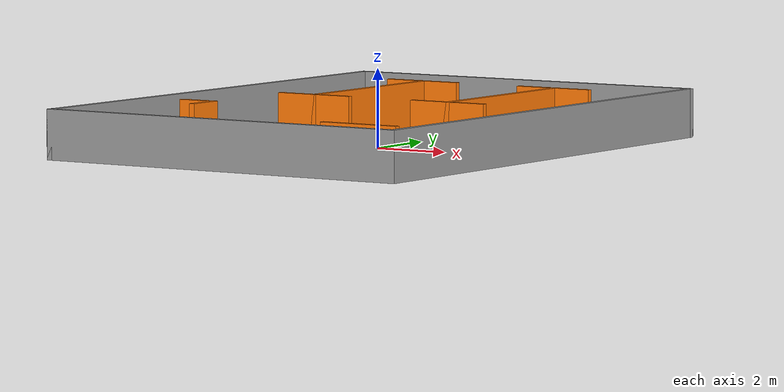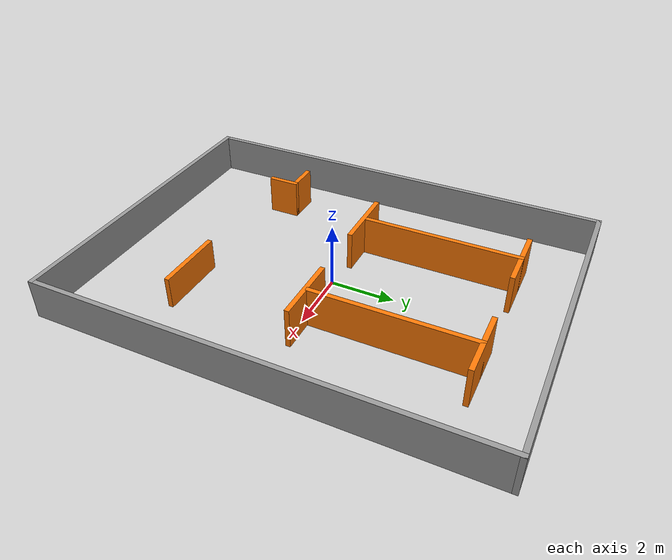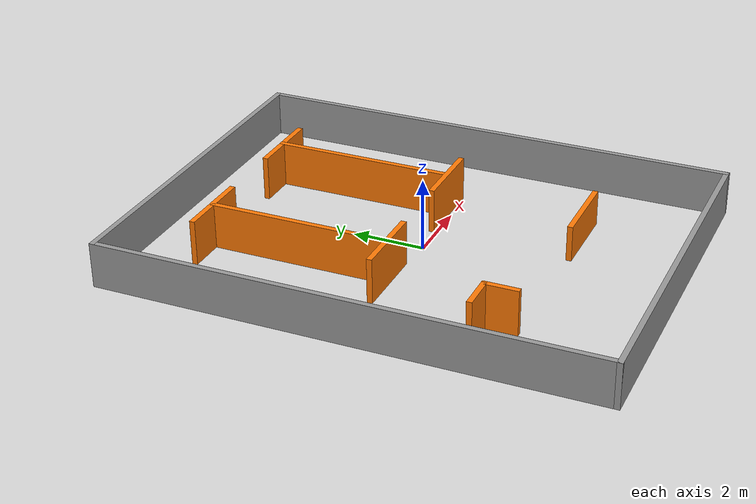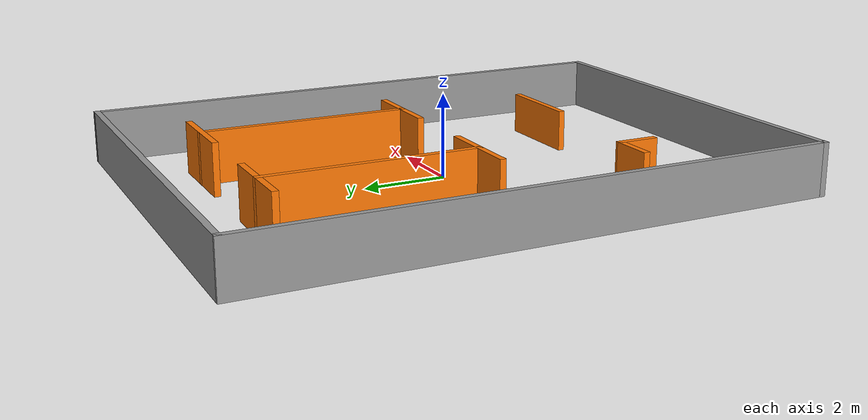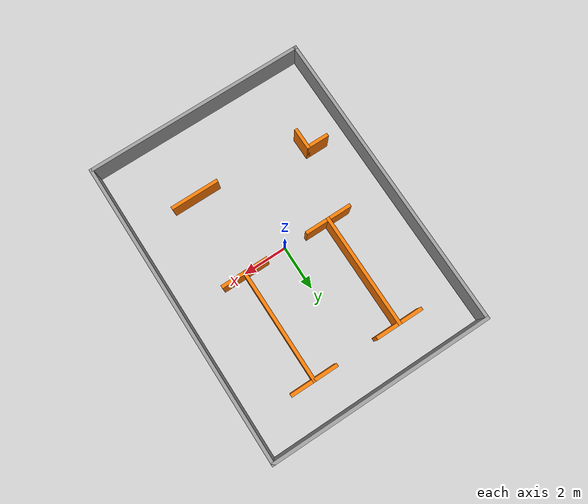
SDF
<?xml version='1.0'?>
<sdf version='1.7'>
  <model name='warehouse_building'>
    <link name='Wall_17'>
      <pose>5 -1.1e-05 0 0 -0 1.5708</pose>
      <self_collide>0</self_collide>
      <enable_wind>0</enable_wind>
      <kinematic>0</kinematic>
      <visual name='Wall_17_Visual'>
        <pose>0 0 0.625 0 -0 0</pose>
        <geometry>
          <box>
            <size>13.873 0.15 1.25</size>
          </box>
        </geometry>
        <material>
          <script>
            <uri>file://media/materials/scripts/gazebo.material</uri>
            <name>Gazebo/Grey</name>
          </script>
          <ambient>1 1 1 1</ambient>
          <shader type='pixel'/>
        </material>
        <meta>
          <layer>0</layer>
        </meta>
        <transparency>0</transparency>
        <cast_shadows>1</cast_shadows>
      </visual>
      <collision name='Wall_17_Collision'>
        <laser_retro>0</laser_retro>
        <max_contacts>10</max_contacts>
        <pose>0 0 0.625 0 -0 0</pose>
        <geometry>
          <box>
            <size>13.873 0.15 1.25</size>
          </box>
        </geometry>
        <surface>
          <friction>
            <ode>
              <mu>1</mu>
              <mu2>1</mu2>
              <fdir1>0 0 0</fdir1>
              <slip1>0</slip1>
              <slip2>0</slip2>
            </ode>
            <torsional>
              <coefficient>1</coefficient>
              <patch_radius>0</patch_radius>
              <surface_radius>0</surface_radius>
              <use_patch_radius>1</use_patch_radius>
              <ode>
                <slip>0</slip>
              </ode>
            </torsional>
          </friction>
          <bounce>
            <restitution_coefficient>0</restitution_coefficient>
            <threshold>1e+06</threshold>
          </bounce>
          <contact>
            <collide_without_contact>0</collide_without_contact>
            <collide_without_contact_bitmask>1</collide_without_contact_bitmask>
            <collide_bitmask>1</collide_bitmask>
            <ode>
              <soft_cfm>0</soft_cfm>
              <soft_erp>0.2</soft_erp>
              <kp>1e+13</kp>
              <kd>1</kd>
              <max_vel>0.01</max_vel>
              <min_depth>0</min_depth>
            </ode>
            <bullet>
              <split_impulse>1</split_impulse>
              <split_impulse_penetration_threshold>-0.01</split_impulse_penetration_threshold>
              <soft_cfm>0</soft_cfm>
              <soft_erp>0.2</soft_erp>
              <kp>1e+13</kp>
              <kd>1</kd>
            </bullet>
          </contact>
        </surface>
      </collision>
    </link>
    <link name='Wall_20'>
      <pose>-5 -0.001511 0 0 -0 1.5708</pose>
      <self_collide>0</self_collide>
      <enable_wind>0</enable_wind>
      <kinematic>0</kinematic>
      <visual name='Wall_20_Visual'>
        <pose>0 0 0.625 0 -0 0</pose>
        <geometry>
          <box>
            <size>13.87 0.15 1.25</size>
          </box>
        </geometry>
        <material>
          <script>
            <uri>file://media/materials/scripts/gazebo.material</uri>
            <name>Gazebo/Grey</name>
          </script>
          <ambient>1 1 1 1</ambient>
          <shader type='pixel'/>
        </material>
        <meta>
          <layer>0</layer>
        </meta>
        <transparency>0</transparency>
        <cast_shadows>1</cast_shadows>
      </visual>
      <collision name='Wall_20_Collision'>
        <laser_retro>0</laser_retro>
        <max_contacts>10</max_contacts>
        <pose>0 0 0.625 0 -0 0</pose>
        <geometry>
          <box>
            <size>13.87 0.15 1.25</size>
          </box>
        </geometry>
        <surface>
          <friction>
            <ode>
              <mu>1</mu>
              <mu2>1</mu2>
              <fdir1>0 0 0</fdir1>
              <slip1>0</slip1>
              <slip2>0</slip2>
            </ode>
            <torsional>
              <coefficient>1</coefficient>
              <patch_radius>0</patch_radius>
              <surface_radius>0</surface_radius>
              <use_patch_radius>1</use_patch_radius>
              <ode>
                <slip>0</slip>
              </ode>
            </torsional>
          </friction>
          <bounce>
            <restitution_coefficient>0</restitution_coefficient>
            <threshold>1e+06</threshold>
          </bounce>
          <contact>
            <collide_without_contact>0</collide_without_contact>
            <collide_without_contact_bitmask>1</collide_without_contact_bitmask>
            <collide_bitmask>1</collide_bitmask>
            <ode>
              <soft_cfm>0</soft_cfm>
              <soft_erp>0.2</soft_erp>
              <kp>1e+13</kp>
              <kd>1</kd>
              <max_vel>0.01</max_vel>
              <min_depth>0</min_depth>
            </ode>
            <bullet>
              <split_impulse>1</split_impulse>
              <split_impulse_penetration_threshold>-0.01</split_impulse_penetration_threshold>
              <soft_cfm>0</soft_cfm>
              <soft_erp>0.2</soft_erp>
              <kp>1e+13</kp>
              <kd>1</kd>
            </bullet>
          </contact>
        </surface>
      </collision>
    </link>
    <link name='Wall_22'>
      <pose>0 6.85999 0 0 -0 0.0003</pose>
      <self_collide>0</self_collide>
      <enable_wind>0</enable_wind>
      <kinematic>0</kinematic>
      <visual name='Wall_22_Visual'>
        <pose>0 0 0.625 0 -0 0</pose>
        <geometry>
          <box>
            <size>10.15 0.15 1.25</size>
          </box>
        </geometry>
        <material>
          <script>
            <uri>file://media/materials/scripts/gazebo.material</uri>
            <name>Gazebo/Grey</name>
          </script>
          <ambient>1 1 1 1</ambient>
          <shader type='pixel'/>
        </material>
        <meta>
          <layer>0</layer>
        </meta>
        <transparency>0</transparency>
        <cast_shadows>1</cast_shadows>
      </visual>
      <collision name='Wall_22_Collision'>
        <laser_retro>0</laser_retro>
        <max_contacts>10</max_contacts>
        <pose>0 0 0.625 0 -0 0</pose>
        <geometry>
          <box>
            <size>10.15 0.15 1.25</size>
          </box>
        </geometry>
        <surface>
          <friction>
            <ode>
              <mu>1</mu>
              <mu2>1</mu2>
              <fdir1>0 0 0</fdir1>
              <slip1>0</slip1>
              <slip2>0</slip2>
            </ode>
            <torsional>
              <coefficient>1</coefficient>
              <patch_radius>0</patch_radius>
              <surface_radius>0</surface_radius>
              <use_patch_radius>1</use_patch_radius>
              <ode>
                <slip>0</slip>
              </ode>
            </torsional>
          </friction>
          <bounce>
            <restitution_coefficient>0</restitution_coefficient>
            <threshold>1e+06</threshold>
          </bounce>
          <contact>
            <collide_without_contact>0</collide_without_contact>
            <collide_without_contact_bitmask>1</collide_without_contact_bitmask>
            <collide_bitmask>1</collide_bitmask>
            <ode>
              <soft_cfm>0</soft_cfm>
              <soft_erp>0.2</soft_erp>
              <kp>1e+13</kp>
              <kd>1</kd>
              <max_vel>0.01</max_vel>
              <min_depth>0</min_depth>
            </ode>
            <bullet>
              <split_impulse>1</split_impulse>
              <split_impulse_penetration_threshold>-0.01</split_impulse_penetration_threshold>
              <soft_cfm>0</soft_cfm>
              <soft_erp>0.2</soft_erp>
              <kp>1e+13</kp>
              <kd>1</kd>
            </bullet>
          </contact>
        </surface>
      </collision>
    </link>
    <link name='Wall_27'>
      <pose>1.975 -3.76151 0 0 -0 3.14159</pose>
      <self_collide>0</self_collide>
      <enable_wind>0</enable_wind>
      <kinematic>0</kinematic>
      <visual name='Wall_27_Visual'>
        <pose>0 0 0.5 0 -0 0</pose>
        <geometry>
          <box>
            <size>2.2 0.15 1</size>
          </box>
        </geometry>
        <material>
          <script>
            <uri>file://media/materials/scripts/gazebo.material</uri>
            <name>Gazebo/Grey</name>
          </script>
          <ambient>0.996078 0.47451 0.0196078 1</ambient>
          <shader type='pixel'/>
        </material>
        <meta>
          <layer>0</layer>
        </meta>
        <transparency>0</transparency>
        <cast_shadows>1</cast_shadows>
      </visual>
      <collision name='Wall_27_Collision'>
        <laser_retro>0</laser_retro>
        <max_contacts>10</max_contacts>
        <pose>0 0 0.5 0 -0 0</pose>
        <geometry>
          <box>
            <size>2.2 0.15 1</size>
          </box>
        </geometry>
        <surface>
          <friction>
            <ode>
              <mu>1</mu>
              <mu2>1</mu2>
              <fdir1>0 0 0</fdir1>
              <slip1>0</slip1>
              <slip2>0</slip2>
            </ode>
            <torsional>
              <coefficient>1</coefficient>
              <patch_radius>0</patch_radius>
              <surface_radius>0</surface_radius>
              <use_patch_radius>1</use_patch_radius>
              <ode>
                <slip>0</slip>
              </ode>
            </torsional>
          </friction>
          <bounce>
            <restitution_coefficient>0</restitution_coefficient>
            <threshold>1e+06</threshold>
          </bounce>
          <contact>
            <collide_without_contact>0</collide_without_contact>
            <collide_without_contact_bitmask>1</collide_without_contact_bitmask>
            <collide_bitmask>1</collide_bitmask>
            <ode>
              <soft_cfm>0</soft_cfm>
              <soft_erp>0.2</soft_erp>
              <kp>1e+13</kp>
              <kd>1</kd>
              <max_vel>0.01</max_vel>
              <min_depth>0</min_depth>
            </ode>
            <bullet>
              <split_impulse>1</split_impulse>
              <split_impulse_penetration_threshold>-0.01</split_impulse_penetration_threshold>
              <soft_cfm>0</soft_cfm>
              <soft_erp>0.2</soft_erp>
              <kp>1e+13</kp>
              <kd>1</kd>
            </bullet>
          </contact>
        </surface>
      </collision>
    </link>
    <link name='Wall_29'>
      <pose>-2 2.63849 0 0 -0 1.5708</pose>
      <self_collide>0</self_collide>
      <enable_wind>0</enable_wind>
      <kinematic>0</kinematic>
      <visual name='Wall_29_Visual'>
        <pose>0 0 0.625 0 -0 0</pose>
        <geometry>
          <box>
            <size>5.15 0.15 1.25</size>
          </box>
        </geometry>
        <material>
          <script>
            <uri>file://media/materials/scripts/gazebo.material</uri>
            <name>Gazebo/Grey</name>
          </script>
          <ambient>0.996078 0.47451 0.0196078 1</ambient>
          <shader type='pixel'/>
        </material>
        <meta>
          <layer>0</layer>
        </meta>
        <transparency>0</transparency>
        <cast_shadows>1</cast_shadows>
      </visual>
      <collision name='Wall_29_Collision'>
        <laser_retro>0</laser_retro>
        <max_contacts>10</max_contacts>
        <pose>0 0 0.625 0 -0 0</pose>
        <geometry>
          <box>
            <size>5.15 0.15 1.25</size>
          </box>
        </geometry>
        <surface>
          <friction>
            <ode>
              <mu>1</mu>
              <mu2>1</mu2>
              <fdir1>0 0 0</fdir1>
              <slip1>0</slip1>
              <slip2>0</slip2>
            </ode>
            <torsional>
              <coefficient>1</coefficient>
              <patch_radius>0</patch_radius>
              <surface_radius>0</surface_radius>
              <use_patch_radius>1</use_patch_radius>
              <ode>
                <slip>0</slip>
              </ode>
            </torsional>
          </friction>
          <bounce>
            <restitution_coefficient>0</restitution_coefficient>
            <threshold>1e+06</threshold>
          </bounce>
          <contact>
            <collide_without_contact>0</collide_without_contact>
            <collide_without_contact_bitmask>1</collide_without_contact_bitmask>
            <collide_bitmask>1</collide_bitmask>
            <ode>
              <soft_cfm>0</soft_cfm>
              <soft_erp>0.2</soft_erp>
              <kp>1e+13</kp>
              <kd>1</kd>
              <max_vel>0.01</max_vel>
              <min_depth>0</min_depth>
            </ode>
            <bullet>
              <split_impulse>1</split_impulse>
              <split_impulse_penetration_threshold>-0.01</split_impulse_penetration_threshold>
              <soft_cfm>0</soft_cfm>
              <soft_erp>0.2</soft_erp>
              <kp>1e+13</kp>
              <kd>1</kd>
            </bullet>
          </contact>
        </surface>
      </collision>
    </link>
    <link name='Wall_31'>
      <pose>-2 5.13849 0 0 -0 0</pose>
      <self_collide>0</self_collide>
      <enable_wind>0</enable_wind>
      <kinematic>0</kinematic>
      <visual name='Wall_31_Visual'>
        <pose>0 0 0.625 0 -0 0</pose>
        <geometry>
          <box>
            <size>2.15 0.15 1.25</size>
          </box>
        </geometry>
        <material>
          <script>
            <uri>file://media/materials/scripts/gazebo.material</uri>
            <name>Gazebo/Grey</name>
          </script>
          <ambient>0.996078 0.47451 0.0196078 1</ambient>
          <shader type='pixel'/>
        </material>
        <meta>
          <layer>0</layer>
        </meta>
        <transparency>0</transparency>
        <cast_shadows>1</cast_shadows>
      </visual>
      <collision name='Wall_31_Collision'>
        <laser_retro>0</laser_retro>
        <max_contacts>10</max_contacts>
        <pose>0 0 0.625 0 -0 0</pose>
        <geometry>
          <box>
            <size>2.15 0.15 1.25</size>
          </box>
        </geometry>
        <surface>
          <friction>
            <ode>
              <mu>1</mu>
              <mu2>1</mu2>
              <fdir1>0 0 0</fdir1>
              <slip1>0</slip1>
              <slip2>0</slip2>
            </ode>
            <torsional>
              <coefficient>1</coefficient>
              <patch_radius>0</patch_radius>
              <surface_radius>0</surface_radius>
              <use_patch_radius>1</use_patch_radius>
              <ode>
                <slip>0</slip>
              </ode>
            </torsional>
          </friction>
          <bounce>
            <restitution_coefficient>0</restitution_coefficient>
            <threshold>1e+06</threshold>
          </bounce>
          <contact>
            <collide_without_contact>0</collide_without_contact>
            <collide_without_contact_bitmask>1</collide_without_contact_bitmask>
            <collide_bitmask>1</collide_bitmask>
            <ode>
              <soft_cfm>0</soft_cfm>
              <soft_erp>0.2</soft_erp>
              <kp>1e+13</kp>
              <kd>1</kd>
              <max_vel>0.01</max_vel>
              <min_depth>0</min_depth>
            </ode>
            <bullet>
              <split_impulse>1</split_impulse>
              <split_impulse_penetration_threshold>-0.01</split_impulse_penetration_threshold>
              <soft_cfm>0</soft_cfm>
              <soft_erp>0.2</soft_erp>
              <kp>1e+13</kp>
              <kd>1</kd>
            </bullet>
          </contact>
        </surface>
      </collision>
    </link>
    <link name='Wall_33'>
      <pose>-2 0.138489 0 0 -0 0</pose>
      <self_collide>0</self_collide>
      <enable_wind>0</enable_wind>
      <kinematic>0</kinematic>
      <visual name='Wall_33_Visual'>
        <pose>0 0 0.625 0 -0 0</pose>
        <geometry>
          <box>
            <size>2.15 0.15 1.25</size>
          </box>
        </geometry>
        <material>
          <script>
            <uri>file://media/materials/scripts/gazebo.material</uri>
            <name>Gazebo/Grey</name>
          </script>
          <ambient>0.996078 0.47451 0.0196078 1</ambient>
          <shader type='pixel'/>
        </material>
        <meta>
          <layer>0</layer>
        </meta>
        <transparency>0</transparency>
        <cast_shadows>1</cast_shadows>
      </visual>
      <collision name='Wall_33_Collision'>
        <laser_retro>0</laser_retro>
        <max_contacts>10</max_contacts>
        <pose>0 0 0.625 0 -0 0</pose>
        <geometry>
          <box>
            <size>2.15 0.15 1.25</size>
          </box>
        </geometry>
        <surface>
          <friction>
            <ode>
              <mu>1</mu>
              <mu2>1</mu2>
              <fdir1>0 0 0</fdir1>
              <slip1>0</slip1>
              <slip2>0</slip2>
            </ode>
            <torsional>
              <coefficient>1</coefficient>
              <patch_radius>0</patch_radius>
              <surface_radius>0</surface_radius>
              <use_patch_radius>1</use_patch_radius>
              <ode>
                <slip>0</slip>
              </ode>
            </torsional>
          </friction>
          <bounce>
            <restitution_coefficient>0</restitution_coefficient>
            <threshold>1e+06</threshold>
          </bounce>
          <contact>
            <collide_without_contact>0</collide_without_contact>
            <collide_without_contact_bitmask>1</collide_without_contact_bitmask>
            <collide_bitmask>1</collide_bitmask>
            <ode>
              <soft_cfm>0</soft_cfm>
              <soft_erp>0.2</soft_erp>
              <kp>1e+13</kp>
              <kd>1</kd>
              <max_vel>0.01</max_vel>
              <min_depth>0</min_depth>
            </ode>
            <bullet>
              <split_impulse>1</split_impulse>
              <split_impulse_penetration_threshold>-0.01</split_impulse_penetration_threshold>
              <soft_cfm>0</soft_cfm>
              <soft_erp>0.2</soft_erp>
              <kp>1e+13</kp>
              <kd>1</kd>
            </bullet>
          </contact>
        </surface>
      </collision>
    </link>
    <link name='Wall_35'>
      <pose>2 2.63849 0 0 0 -1.5708</pose>
      <self_collide>0</self_collide>
      <enable_wind>0</enable_wind>
      <kinematic>0</kinematic>
      <visual name='Wall_35_Visual'>
        <pose>0 0 0.625 0 -0 0</pose>
        <geometry>
          <box>
            <size>5.15 0.15 1.25</size>
          </box>
        </geometry>
        <material>
          <script>
            <uri>file://media/materials/scripts/gazebo.material</uri>
            <name>Gazebo/Grey</name>
          </script>
          <ambient>0.996078 0.47451 0.0196078 1</ambient>
          <shader type='pixel'/>
        </material>
        <meta>
          <layer>0</layer>
        </meta>
        <transparency>0</transparency>
        <cast_shadows>1</cast_shadows>
      </visual>
      <collision name='Wall_35_Collision'>
        <laser_retro>0</laser_retro>
        <max_contacts>10</max_contacts>
        <pose>0 0 0.625 0 -0 0</pose>
        <geometry>
          <box>
            <size>5.15 0.15 1.25</size>
          </box>
        </geometry>
        <surface>
          <friction>
            <ode>
              <mu>1</mu>
              <mu2>1</mu2>
              <fdir1>0 0 0</fdir1>
              <slip1>0</slip1>
              <slip2>0</slip2>
            </ode>
            <torsional>
              <coefficient>1</coefficient>
              <patch_radius>0</patch_radius>
              <surface_radius>0</surface_radius>
              <use_patch_radius>1</use_patch_radius>
              <ode>
                <slip>0</slip>
              </ode>
            </torsional>
          </friction>
          <bounce>
            <restitution_coefficient>0</restitution_coefficient>
            <threshold>1e+06</threshold>
          </bounce>
          <contact>
            <collide_without_contact>0</collide_without_contact>
            <collide_without_contact_bitmask>1</collide_without_contact_bitmask>
            <collide_bitmask>1</collide_bitmask>
            <ode>
              <soft_cfm>0</soft_cfm>
              <soft_erp>0.2</soft_erp>
              <kp>1e+13</kp>
              <kd>1</kd>
              <max_vel>0.01</max_vel>
              <min_depth>0</min_depth>
            </ode>
            <bullet>
              <split_impulse>1</split_impulse>
              <split_impulse_penetration_threshold>-0.01</split_impulse_penetration_threshold>
              <soft_cfm>0</soft_cfm>
              <soft_erp>0.2</soft_erp>
              <kp>1e+13</kp>
              <kd>1</kd>
            </bullet>
          </contact>
        </surface>
      </collision>
    </link>
    <link name='Wall_39'>
      <pose>2 0.138489 0 0 -0 0</pose>
      <self_collide>0</self_collide>
      <enable_wind>0</enable_wind>
      <kinematic>0</kinematic>
      <visual name='Wall_39_Visual'>
        <pose>0 0 0.625 0 -0 0</pose>
        <geometry>
          <box>
            <size>2.15 0.15 1.25</size>
          </box>
        </geometry>
        <material>
          <script>
            <uri>file://media/materials/scripts/gazebo.material</uri>
            <name>Gazebo/Grey</name>
          </script>
          <ambient>0.996078 0.47451 0.0196078 1</ambient>
          <shader type='pixel'/>
        </material>
        <meta>
          <layer>0</layer>
        </meta>
        <transparency>0</transparency>
        <cast_shadows>1</cast_shadows>
      </visual>
      <collision name='Wall_39_Collision'>
        <laser_retro>0</laser_retro>
        <max_contacts>10</max_contacts>
        <pose>0 0 0.625 0 -0 0</pose>
        <geometry>
          <box>
            <size>2.15 0.15 1.25</size>
          </box>
        </geometry>
        <surface>
          <friction>
            <ode>
              <mu>1</mu>
              <mu2>1</mu2>
              <fdir1>0 0 0</fdir1>
              <slip1>0</slip1>
              <slip2>0</slip2>
            </ode>
            <torsional>
              <coefficient>1</coefficient>
              <patch_radius>0</patch_radius>
              <surface_radius>0</surface_radius>
              <use_patch_radius>1</use_patch_radius>
              <ode>
                <slip>0</slip>
              </ode>
            </torsional>
          </friction>
          <bounce>
            <restitution_coefficient>0</restitution_coefficient>
            <threshold>1e+06</threshold>
          </bounce>
          <contact>
            <collide_without_contact>0</collide_without_contact>
            <collide_without_contact_bitmask>1</collide_without_contact_bitmask>
            <collide_bitmask>1</collide_bitmask>
            <ode>
              <soft_cfm>0</soft_cfm>
              <soft_erp>0.2</soft_erp>
              <kp>1e+13</kp>
              <kd>1</kd>
              <max_vel>0.01</max_vel>
              <min_depth>0</min_depth>
            </ode>
            <bullet>
              <split_impulse>1</split_impulse>
              <split_impulse_penetration_threshold>-0.01</split_impulse_penetration_threshold>
              <soft_cfm>0</soft_cfm>
              <soft_erp>0.2</soft_erp>
              <kp>1e+13</kp>
              <kd>1</kd>
            </bullet>
          </contact>
        </surface>
      </collision>
    </link>
    <link name='Wall_41'>
      <pose>2 5.13849 0 0 -0 3.14159</pose>
      <self_collide>0</self_collide>
      <enable_wind>0</enable_wind>
      <kinematic>0</kinematic>
      <visual name='Wall_41_Visual'>
        <pose>0 0 0.625 0 -0 0</pose>
        <geometry>
          <box>
            <size>2.15 0.15 1.25</size>
          </box>
        </geometry>
        <material>
          <script>
            <uri>file://media/materials/scripts/gazebo.material</uri>
            <name>Gazebo/Grey</name>
          </script>
          <ambient>0.996078 0.47451 0.0196078 1</ambient>
          <shader type='pixel'/>
        </material>
        <meta>
          <layer>0</layer>
        </meta>
        <transparency>0</transparency>
        <cast_shadows>1</cast_shadows>
      </visual>
      <collision name='Wall_41_Collision'>
        <laser_retro>0</laser_retro>
        <max_contacts>10</max_contacts>
        <pose>0 0 0.625 0 -0 0</pose>
        <geometry>
          <box>
            <size>2.15 0.15 1.25</size>
          </box>
        </geometry>
        <surface>
          <friction>
            <ode>
              <mu>1</mu>
              <mu2>1</mu2>
              <fdir1>0 0 0</fdir1>
              <slip1>0</slip1>
              <slip2>0</slip2>
            </ode>
            <torsional>
              <coefficient>1</coefficient>
              <patch_radius>0</patch_radius>
              <surface_radius>0</surface_radius>
              <use_patch_radius>1</use_patch_radius>
              <ode>
                <slip>0</slip>
              </ode>
            </torsional>
          </friction>
          <bounce>
            <restitution_coefficient>0</restitution_coefficient>
            <threshold>1e+06</threshold>
          </bounce>
          <contact>
            <collide_without_contact>0</collide_without_contact>
            <collide_without_contact_bitmask>1</collide_without_contact_bitmask>
            <collide_bitmask>1</collide_bitmask>
            <ode>
              <soft_cfm>0</soft_cfm>
              <soft_erp>0.2</soft_erp>
              <kp>1e+13</kp>
              <kd>1</kd>
              <max_vel>0.01</max_vel>
              <min_depth>0</min_depth>
            </ode>
            <bullet>
              <split_impulse>1</split_impulse>
              <split_impulse_penetration_threshold>-0.01</split_impulse_penetration_threshold>
              <soft_cfm>0</soft_cfm>
              <soft_erp>0.2</soft_erp>
              <kp>1e+13</kp>
              <kd>1</kd>
            </bullet>
          </contact>
        </surface>
      </collision>
    </link>
    <link name='Wall_43'>
      <pose>0 -6.86151 0 0 -0 0</pose>
      <self_collide>0</self_collide>
      <enable_wind>0</enable_wind>
      <kinematic>0</kinematic>
      <visual name='Wall_43_Visual'>
        <pose>0 0 0.625 0 -0 0</pose>
        <geometry>
          <box>
            <size>10.15 0.15 1.25</size>
          </box>
        </geometry>
        <material>
          <script>
            <uri>file://media/materials/scripts/gazebo.material</uri>
            <name>Gazebo/Grey</name>
          </script>
          <ambient>1 1 1 1</ambient>
          <shader type='pixel'/>
        </material>
        <meta>
          <layer>0</layer>
        </meta>
        <transparency>0</transparency>
        <cast_shadows>1</cast_shadows>
      </visual>
      <collision name='Wall_43_Collision'>
        <laser_retro>0</laser_retro>
        <max_contacts>10</max_contacts>
        <pose>0 0 0.625 0 -0 0</pose>
        <geometry>
          <box>
            <size>10.15 0.15 1.25</size>
          </box>
        </geometry>
        <surface>
          <friction>
            <ode>
              <mu>1</mu>
              <mu2>1</mu2>
              <fdir1>0 0 0</fdir1>
              <slip1>0</slip1>
              <slip2>0</slip2>
            </ode>
            <torsional>
              <coefficient>1</coefficient>
              <patch_radius>0</patch_radius>
              <surface_radius>0</surface_radius>
              <use_patch_radius>1</use_patch_radius>
              <ode>
                <slip>0</slip>
              </ode>
            </torsional>
          </friction>
          <bounce>
            <restitution_coefficient>0</restitution_coefficient>
            <threshold>1e+06</threshold>
          </bounce>
          <contact>
            <collide_without_contact>0</collide_without_contact>
            <collide_without_contact_bitmask>1</collide_without_contact_bitmask>
            <collide_bitmask>1</collide_bitmask>
            <ode>
              <soft_cfm>0</soft_cfm>
              <soft_erp>0.2</soft_erp>
              <kp>1e+13</kp>
              <kd>1</kd>
              <max_vel>0.01</max_vel>
              <min_depth>0</min_depth>
            </ode>
            <bullet>
              <split_impulse>1</split_impulse>
              <split_impulse_penetration_threshold>-0.01</split_impulse_penetration_threshold>
              <soft_cfm>0</soft_cfm>
              <soft_erp>0.2</soft_erp>
              <kp>1e+13</kp>
              <kd>1</kd>
            </bullet>
          </contact>
        </surface>
      </collision>
    </link>
    <link name='Wall_45_clone'>
      <pose>-3 -3.28651 0 0 0 -1.5708</pose>
      <self_collide>0</self_collide>
      <enable_wind>0</enable_wind>
      <kinematic>0</kinematic>
      <gravity>1</gravity>
      <inertial>
        <mass>1</mass>
        <pose>0 0 0 0 -0 0</pose>
        <inertia>
          <ixx>1</ixx>
          <ixy>0</ixy>
          <ixz>0</ixz>
          <iyy>1</iyy>
          <iyz>0</iyz>
          <izz>1</izz>
        </inertia>
      </inertial>
      <visual name='Wall_45_Visual'>
        <pose>0 0 0.625 0 -0 0</pose>
        <geometry>
          <box>
            <size>1 0.15 1.25</size>
          </box>
        </geometry>
        <material>
          <script>
            <uri>file://media/materials/scripts/gazebo.material</uri>
            <name>Gazebo/Grey</name>
          </script>
          <ambient>0.996 0.475 0.02 1</ambient>
          <shader type='pixel'>
            <normal_map>__default__</normal_map>
          </shader>
          <diffuse>0.7 0.7 0.7 1</diffuse>
          <specular>0.01 0.01 0.01 1</specular>
          <emissive>0 0 0 1</emissive>
        </material>
        <meta>
          <layer>0</layer>
        </meta>
        <transparency>0</transparency>
        <cast_shadows>1</cast_shadows>
      </visual>
      <collision name='Wall_45_Collision'>
        <laser_retro>0</laser_retro>
        <max_contacts>10</max_contacts>
        <pose>0 0 0.625 0 -0 0</pose>
        <geometry>
          <box>
            <size>1 0.15 1.25</size>
          </box>
        </geometry>
        <surface>
          <friction>
            <ode>
              <mu>1</mu>
              <mu2>1</mu2>
              <fdir1>0 0 0</fdir1>
              <slip1>0</slip1>
              <slip2>0</slip2>
            </ode>
            <torsional>
              <coefficient>1</coefficient>
              <patch_radius>0</patch_radius>
              <surface_radius>0</surface_radius>
              <use_patch_radius>1</use_patch_radius>
              <ode>
                <slip>0</slip>
              </ode>
            </torsional>
          </friction>
          <bounce>
            <restitution_coefficient>0</restitution_coefficient>
            <threshold>1e+06</threshold>
          </bounce>
          <contact>
            <collide_without_contact>0</collide_without_contact>
            <collide_without_contact_bitmask>1</collide_without_contact_bitmask>
            <collide_bitmask>1</collide_bitmask>
            <ode>
              <soft_cfm>0</soft_cfm>
              <soft_erp>0.2</soft_erp>
              <kp>1e+13</kp>
              <kd>1</kd>
              <max_vel>0.01</max_vel>
              <min_depth>0</min_depth>
            </ode>
            <bullet>
              <split_impulse>1</split_impulse>
              <split_impulse_penetration_threshold>-0.01</split_impulse_penetration_threshold>
              <soft_cfm>0</soft_cfm>
              <soft_erp>0.2</soft_erp>
              <kp>1e+13</kp>
              <kd>1</kd>
            </bullet>
          </contact>
        </surface>
      </collision>
    </link>
    <link name='Wall_45_clone_clone'>
      <pose>-3.47935 -2.86151 0 0 -0 0</pose>
      <self_collide>0</self_collide>
      <enable_wind>0</enable_wind>
      <kinematic>0</kinematic>
      <gravity>1</gravity>
      <inertial>
        <mass>1</mass>
        <pose>0 0 0 0 -0 0</pose>
        <inertia>
          <ixx>1</ixx>
          <ixy>0</ixy>
          <ixz>0</ixz>
          <iyy>1</iyy>
          <iyz>0</iyz>
          <izz>1</izz>
        </inertia>
      </inertial>
      <visual name='Wall_45_Visual'>
        <pose>0 0 0.625 0 -0 0</pose>
        <geometry>
          <box>
            <size>1 0.15 1.25</size>
          </box>
        </geometry>
        <material>
          <script>
            <uri>file://media/materials/scripts/gazebo.material</uri>
            <name>Gazebo/Grey</name>
          </script>
          <ambient>0.996 0.475 0.02 1</ambient>
          <shader type='pixel'>
            <normal_map>__default__</normal_map>
          </shader>
          <diffuse>0.7 0.7 0.7 1</diffuse>
          <specular>0.01 0.01 0.01 1</specular>
          <emissive>0 0 0 1</emissive>
        </material>
        <meta>
          <layer>0</layer>
        </meta>
        <transparency>0</transparency>
        <cast_shadows>1</cast_shadows>
      </visual>
      <collision name='Wall_45_Collision'>
        <laser_retro>0</laser_retro>
        <max_contacts>10</max_contacts>
        <pose>0 0 0.625 0 -0 0</pose>
        <geometry>
          <box>
            <size>1 0.15 1.25</size>
          </box>
        </geometry>
        <surface>
          <friction>
            <ode>
              <mu>1</mu>
              <mu2>1</mu2>
              <fdir1>0 0 0</fdir1>
              <slip1>0</slip1>
              <slip2>0</slip2>
            </ode>
            <torsional>
              <coefficient>1</coefficient>
              <patch_radius>0</patch_radius>
              <surface_radius>0</surface_radius>
              <use_patch_radius>1</use_patch_radius>
              <ode>
                <slip>0</slip>
              </ode>
            </torsional>
          </friction>
          <bounce>
            <restitution_coefficient>0</restitution_coefficient>
            <threshold>1e+06</threshold>
          </bounce>
          <contact>
            <collide_without_contact>0</collide_without_contact>
            <collide_without_contact_bitmask>1</collide_without_contact_bitmask>
            <collide_bitmask>1</collide_bitmask>
            <ode>
              <soft_cfm>0</soft_cfm>
              <soft_erp>0.2</soft_erp>
              <kp>1e+13</kp>
              <kd>1</kd>
              <max_vel>0.01</max_vel>
              <min_depth>0</min_depth>
            </ode>
            <bullet>
              <split_impulse>1</split_impulse>
              <split_impulse_penetration_threshold>-0.01</split_impulse_penetration_threshold>
              <soft_cfm>0</soft_cfm>
              <soft_erp>0.2</soft_erp>
              <kp>1e+13</kp>
              <kd>1</kd>
            </bullet>
          </contact>
        </surface>
      </collision>
    </link>
    <static>1</static>
    <allow_auto_disable>1</allow_auto_disable>
  </model>
</sdf>
